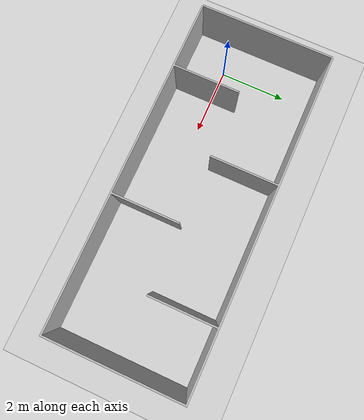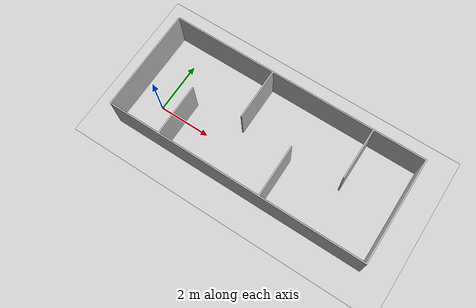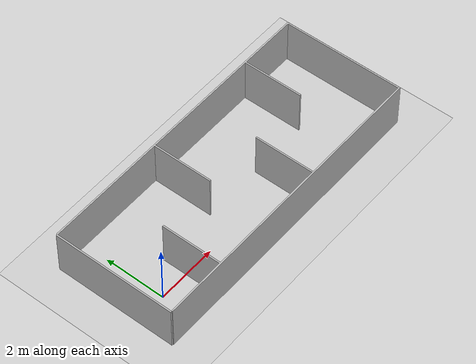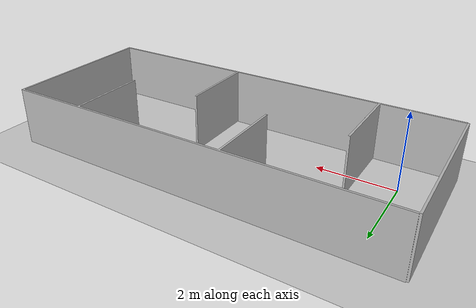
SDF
<?xml version="1.0" encoding="UTF-8" ?>
<sdf version="1.4">
  <world name="default">
    <scene>
      <ambient>0.5 0.5 0.5 1</ambient>
      <background>0.5 0.5 0.5 1</background>
      <shadows>false</shadows>
    </scene>
    <!-- A global light source -->
    <include>
      <uri>model://sun</uri>
    </include>
    <physics type="ode">
      <max_step_size>0.0025</max_step_size>
      <real_time_factor>1</real_time_factor>
      <real_time_update_rate>1000</real_time_update_rate>
      <gravity>0 0 -9.8</gravity>
    </physics>
    <light type="directional" name="directional_light_1">
      <cast_shadows>false</cast_shadows>
      <pose>0 0 30 0.1 0.1 0</pose>
      <diffuse>.5 .5 .5 1</diffuse>
      <specular>.1 .1 .1 1</specular>
      <attenuation>
        <range>300</range>
      </attenuation>
      <direction>0.1 0.1 -1</direction>
    </light>
    <model name="plane_model">
      <static>true</static>
      <link name="plane_model_link">
        <collision name="plane_model_collision">
          <geometry>
            <plane>
              <normal>0 0 1</normal>
              <size>100 100</size>
            </plane>
          </geometry>
          <surface>
            <friction>
              <ode>
                <mu>10</mu>
                <mu2>10</mu2>
                <fdir1>0 0 0</fdir1>
                <slip1>0</slip1>
                <slip2>0</slip2>
              </ode>
            </friction>
            <bounce>
              <restitution_coefficient>0</restitution_coefficient>
              <threshold>1000000.0</threshold>
            </bounce>
            <contact>
              <ode>
                <soft_cfm>0</soft_cfm>
                <soft_erp>0.2</soft_erp>
                <kp>1e10</kp>
                <kd>1</kd>
                <max_vel>100.0</max_vel>
                <min_depth>0.0001</min_depth>
              </ode>
            </contact>
          </surface>
        </collision>
        <visual name="plane_model_visual">
          <cast_shadows>false</cast_shadows>
          <geometry>
            <plane>
              <normal>0 0 1</normal>
              <size>100 100</size>
            </plane>
          </geometry>
          <material>
            <script>Gazebo/Grey</script>
          </material>
        </visual>
      </link>
    </model>
    <model name="zic_zac_room_no_ramps">
      <static>true</static>
      <link name="zic_zac_room_no_ramps_link">
        <pose>4.0 0.8 0.75 0 0 0</pose>
        <collision name="zic_zac_room_no_ramps_collision">
          <geometry>
            <mesh>
              <uri>file://rooms/zic_zac_room_no_ramps.dae</uri>
              <scale>1 1 1</scale>
            </mesh>
          </geometry>
        </collision>
        <visual name="zic_zac_room_no_ramps_visual">
          <cast_shadows>false</cast_shadows>
          <geometry>
            <mesh>
              <uri>file://rooms/zic_zac_room_no_ramps.dae</uri>
              <scale>1 1 1</scale>
            </mesh>
          </geometry>
        </visual>
      </link>
    </model>
  </world>
</sdf>
